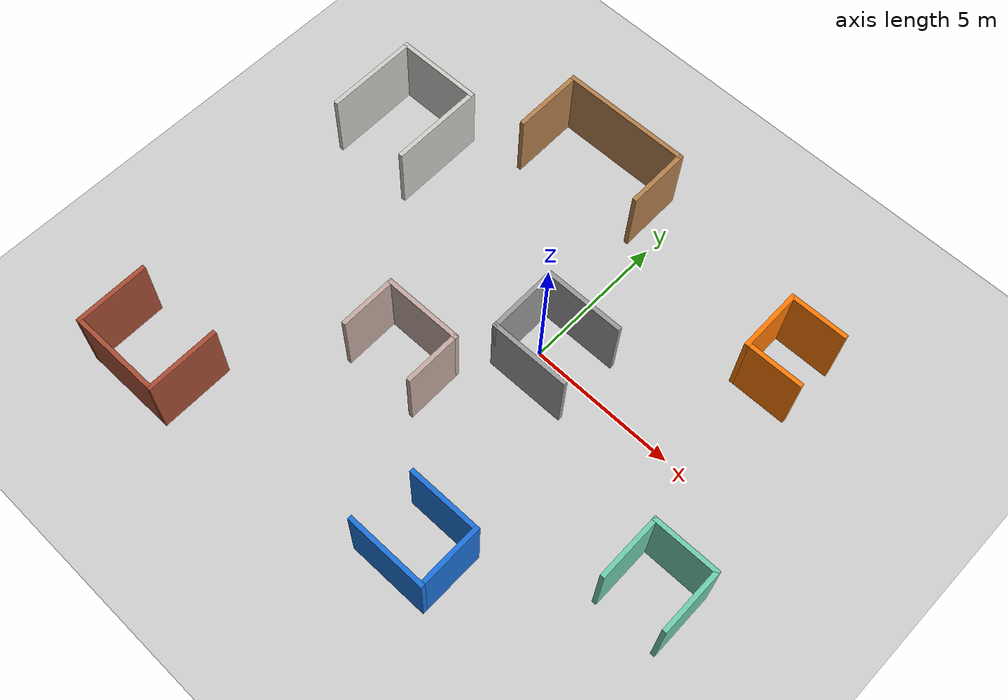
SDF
<sdf version="1.7">
 <world name="default">
  <light name="sun" type="directional">
   <pose>0 0 10 0 -0 0</pose>
   <diffuse>0.8 0.8 0.8 1</diffuse>
   <specular>0.2 0.2 0.2 1</specular>
   <attenuation>
    <range>1000</range>
    <constant>0.9</constant>
    <linear>0.01</linear>
    <quadratic>0.001</quadratic>
   </attenuation>
   <direction>-0.5 0.1 -0.9</direction>
   <spot><inner_angle>0</inner_angle><outer_angle>0</outer_angle><falloff>0</falloff></spot>
  </light>
  <model name="ground_plane">
   <static>1</static>
   <link name="link">
    <collision name="collision">
     <geometry><plane><normal>0 0 1</normal><size>100 100</size></plane></geometry>
     <surface><friction><ode><mu>100</mu><mu2>50</mu2></ode></friction></surface>
    </collision>
    <visual name="visual">
     <cast_shadows>0</cast_shadows>
     <geometry><plane><normal>0 0 1</normal><size>100 100</size></plane></geometry>
     <material>
      <script><uri>file://media/materials/scripts/gazebo.material</uri><name>Gazebo/Grey</name></script>
     </material>
    </visual>
   </link>
  </model>
  <gravity>0 0 -9.8</gravity>
  <magnetic_field>6e-06 2.3e-05 -4.2e-05</magnetic_field>
  <atmosphere type="adiabatic"/>
  <physics type="ode">
   <max_step_size>0.001</max_step_size>
   <real_time_factor>1</real_time_factor>
   <real_time_update_rate>1000</real_time_update_rate>
  </physics>
  <scene><ambient>0.4 0.4 0.4 1</ambient><background>0.7 0.7 0.7 1</background><shadows>1</shadows></scene>
  <audio><device>default</device></audio>
  <spherical_coordinates>
   <surface_model>EARTH_WGS84</surface_model>
   <latitude_deg>0</latitude_deg>
   <longitude_deg>0</longitude_deg>
   <elevation>0</elevation>
   <heading_deg>0</heading_deg>
  </spherical_coordinates>
  <model name="ros2_world">
   <pose>-0.679347 -1.16581 0 0 0 -3.12914</pose>
   <link name="Wall_56">
    <collision name="Wall_56_Collision">
     <geometry><box><size>2.75 0.15 2.5</size></box></geometry>
     <pose>0 0 1.25 0 -0 0</pose>
    </collision>
    <visual name="Wall_56_Visual">
     <pose>0 0 1.25 0 -0 0</pose>
     <geometry><box><size>2.75 0.15 2.5</size></box></geometry>
     <material>
      <script><uri>file://media/materials/scripts/gazebo.material</uri><name>Gazebo/Grey</name></script>
      <ambient>1 1 1 1</ambient>
     </material>
     <meta><layer>0</layer></meta>
    </visual>
    <pose>-1.20089 0.017731 0 0 -0 0</pose>
   </link>
   <link name="Wall_57">
    <collision name="Wall_57_Collision">
     <geometry><box><size>2.5 0.15 2.5</size></box></geometry>
     <pose>0 0 1.25 0 -0 0</pose>
    </collision>
    <visual name="Wall_57_Visual">
     <pose>0 0 1.25 0 -0 0</pose>
     <geometry><box><size>2.5 0.15 2.5</size></box></geometry>
     <material>
      <script><uri>file://media/materials/scripts/gazebo.material</uri><name>Gazebo/Grey</name></script>
      <ambient>1 1 1 1</ambient>
     </material>
     <meta><layer>0</layer></meta>
    </visual>
    <pose>0.099111 -1.15727 0 0 -0 -1.5708</pose>
   </link>
   <link name="Wall_58">
    <collision name="Wall_58_Collision">
     <geometry><box><size>2.75 0.15 2.5</size></box></geometry>
     <pose>0 0 1.25 0 -0 0</pose>
    </collision>
    <visual name="Wall_58_Visual">
     <pose>0 0 1.25 0 -0 0</pose>
     <geometry><box><size>2.75 0.15 2.5</size></box></geometry>
     <material>
      <script><uri>file://media/materials/scripts/gazebo.material</uri><name>Gazebo/Grey</name></script>
      <ambient>1 1 1 1</ambient>
     </material>
     <meta><layer>0</layer></meta>
    </visual>
    <pose>-1.20089 -2.33227 0 0 -0 3.14159</pose>
   </link>
   <link name="Wall_60">
    <collision name="Wall_60_Collision">
     <geometry><box><size>2 0.15 2.5</size></box></geometry>
     <pose>0 0 1.25 0 -0 0</pose>
    </collision>
    <visual name="Wall_60_Visual">
     <pose>0 0 1.25 0 -0 0</pose>
     <geometry><box><size>2 0.15 2.5</size></box></geometry>
     <material>
      <script><uri>file://media/materials/scripts/gazebo.material</uri><name>Gazebo/Grey</name></script>
      <ambient>0.760784 0.662745 0.627451 1</ambient>
     </material>
     <meta><layer>0</layer></meta>
    </visual>
    <pose>0.695285 2.00179 0 0 -0 -1.5708</pose>
   </link>
   <link name="Wall_61">
    <collision name="Wall_61_Collision">
     <geometry><box><size>2.75 0.15 2.5</size></box></geometry>
     <pose>0 0 1.25 0 -0 0</pose>
    </collision>
    <visual name="Wall_61_Visual">
     <pose>0 0 1.25 0 -0 0</pose>
     <geometry><box><size>2.75 0.15 2.5</size></box></geometry>
     <material>
      <script><uri>file://media/materials/scripts/gazebo.material</uri><name>Gazebo/Grey</name></script>
      <ambient>0.760784 0.662745 0.627451 1</ambient>
     </material>
     <meta><layer>0</layer></meta>
    </visual>
    <pose>1.99528 1.07679 0 0 -0 0</pose>
   </link>
   <link name="Wall_62">
    <collision name="Wall_62_Collision">
     <geometry><box><size>2 0.15 2.5</size></box></geometry>
     <pose>0 0 1.25 0 -0 0</pose>
    </collision>
    <visual name="Wall_62_Visual">
     <pose>0 0 1.25 0 -0 0</pose>
     <geometry><box><size>2 0.15 2.5</size></box></geometry>
     <material>
      <script><uri>file://media/materials/scripts/gazebo.material</uri><name>Gazebo/Grey</name></script>
      <ambient>0.760784 0.662745 0.627451 1</ambient>
     </material>
     <meta><layer>0</layer></meta>
    </visual>
    <pose>3.29528 2.00179 0 0 -0 1.5708</pose>
   </link>
   <link name="Wall_64">
    <collision name="Wall_64_Collision">
     <geometry><box><size>2.25 0.15 2.5</size></box></geometry>
     <pose>0 0 1.25 0 -0 0</pose>
    </collision>
    <visual name="Wall_64_Visual">
     <pose>0 0 1.25 0 -0 0</pose>
     <geometry><box><size>2.25 0.15 2.5</size></box></geometry>
     <material>
      <script><uri>file://media/materials/scripts/gazebo.material</uri><name>Gazebo/Grey</name></script>
      <ambient>0.435294 0.796078 0.67451 1</ambient>
     </material>
     <meta><layer>0</layer></meta>
    </visual>
    <pose>-9.049 2.4001 0 0 -0 -1.5708</pose>
   </link>
   <link name="Wall_65">
    <collision name="Wall_65_Collision">
     <geometry><box><size>2.25 0.15 2.5</size></box></geometry>
     <pose>0 0 1.25 0 -0 0</pose>
    </collision>
    <visual name="Wall_65_Visual">
     <pose>0 0 1.25 0 -0 0</pose>
     <geometry><box><size>2.25 0.15 2.5</size></box></geometry>
     <material>
      <script><uri>file://media/materials/scripts/gazebo.material</uri><name>Gazebo/Grey</name></script>
      <ambient>0.435294 0.796078 0.67451 1</ambient>
     </material>
     <meta><layer>0</layer></meta>
    </visual>
    <pose>-7.999 1.3501 0 0 -0 0</pose>
   </link>
   <link name="Wall_66">
    <collision name="Wall_66_Collision">
     <geometry><box><size>2.25 0.15 2.5</size></box></geometry>
     <pose>0 0 1.25 0 -0 0</pose>
    </collision>
    <visual name="Wall_66_Visual">
     <pose>0 0 1.25 0 -0 0</pose>
     <geometry><box><size>2.25 0.15 2.5</size></box></geometry>
     <material>
      <script><uri>file://media/materials/scripts/gazebo.material</uri><name>Gazebo/Grey</name></script>
      <ambient>0.435294 0.796078 0.67451 1</ambient>
     </material>
     <meta><layer>0</layer></meta>
    </visual>
    <pose>-6.949 2.4001 0 0 -0 1.5708</pose>
   </link>
   <link name="Wall_68">
    <collision name="Wall_68_Collision">
     <geometry><box><size>2 0.15 2.5</size></box></geometry>
     <pose>0 0 1.25 0 -0 0</pose>
    </collision>
    <visual name="Wall_68_Visual">
     <pose>0 0 1.25 0 -0 0</pose>
     <geometry><box><size>2 0.15 2.5</size></box></geometry>
     <material>
      <script><uri>file://media/materials/scripts/gazebo.material</uri><name>Gazebo/Grey</name></script>
      <ambient>0.996078 0.47451 0.0196078 1</ambient>
     </material>
     <meta><layer>0</layer></meta>
    </visual>
    <pose>-6.42777 -4.48969 0 0 -0 0</pose>
   </link>
   <link name="Wall_69">
    <collision name="Wall_69_Collision">
     <geometry><box><size>2.25 0.15 2.5</size></box></geometry>
     <pose>0 0 1.25 0 -0 0</pose>
    </collision>
    <visual name="Wall_69_Visual">
     <pose>0 0 1.25 0 -0 0</pose>
     <geometry><box><size>2.25 0.15 2.5</size></box></geometry>
     <material>
      <script><uri>file://media/materials/scripts/gazebo.material</uri><name>Gazebo/Grey</name></script>
      <ambient>0.996078 0.47451 0.0196078 1</ambient>
     </material>
     <meta><layer>0</layer></meta>
    </visual>
    <pose>-5.50277 -5.53969 0 0 -0 -1.5708</pose>
   </link>
   <link name="Wall_70">
    <collision name="Wall_70_Collision">
     <geometry><box><size>2 0.15 2.5</size></box></geometry>
     <pose>0 0 1.25 0 -0 0</pose>
    </collision>
    <visual name="Wall_70_Visual">
     <pose>0 0 1.25 0 -0 0</pose>
     <geometry><box><size>2 0.15 2.5</size></box></geometry>
     <material>
      <script><uri>file://media/materials/scripts/gazebo.material</uri><name>Gazebo/Grey</name></script>
      <ambient>0.996078 0.47451 0.0196078 1</ambient>
     </material>
     <meta><layer>0</layer></meta>
    </visual>
    <pose>-6.42777 -6.58969 0 0 -0 3.14159</pose>
   </link>
   <link name="Wall_72">
    <collision name="Wall_72_Collision">
     <geometry><box><size>3.25 0.15 2.5</size></box></geometry>
     <pose>0 0 1.25 0 -0 0</pose>
    </collision>
    <visual name="Wall_72_Visual">
     <pose>0 0 1.25 0 -0 0</pose>
     <geometry><box><size>3.25 0.15 2.5</size></box></geometry>
     <material>
      <script><uri>file://media/materials/scripts/gazebo.material</uri><name>Gazebo/CeilingTiled</name></script>
      <ambient>0.568627 0.254902 0.67451 1</ambient>
     </material>
     <meta><layer>0</layer></meta>
    </visual>
    <pose>6.199 -3.8743 0 0 -0 -1.5708</pose>
   </link>
   <link name="Wall_73">
    <collision name="Wall_73_Collision">
     <geometry><box><size>3 0.15 2.5</size></box></geometry>
     <pose>0 0 1.25 0 -0 0</pose>
    </collision>
    <visual name="Wall_73_Visual">
     <pose>0 0 1.25 0 -0 0</pose>
     <geometry><box><size>3 0.15 2.5</size></box></geometry>
     <material>
      <script><uri>file://media/materials/scripts/gazebo.material</uri><name>Gazebo/CeilingTiled</name></script>
      <ambient>0.568627 0.254902 0.67451 1</ambient>
     </material>
     <meta><layer>0</layer></meta>
    </visual>
    <pose>7.624 -5.4243 0 0 -0 0</pose>
   </link>
   <link name="Wall_74">
    <collision name="Wall_74_Collision">
     <geometry><box><size>3.25 0.15 2.5</size></box></geometry>
     <pose>0 0 1.25 0 -0 0</pose>
    </collision>
    <visual name="Wall_74_Visual">
     <pose>0 0 1.25 0 -0 0</pose>
     <geometry><box><size>3.25 0.15 2.5</size></box></geometry>
     <material>
      <script><uri>file://media/materials/scripts/gazebo.material</uri><name>Gazebo/CeilingTiled</name></script>
      <ambient>0.568627 0.254902 0.67451 1</ambient>
     </material>
     <meta><layer>0</layer></meta>
    </visual>
    <pose>9.049 -3.8743 0 0 -0 1.5708</pose>
   </link>
   <link name="Wall_76">
    <collision name="Wall_76_Collision">
     <geometry><box><size>2.25 0.15 2.5</size></box></geometry>
     <pose>0 0 1.25 0 -0 0</pose>
    </collision>
    <visual name="Wall_76_Visual">
     <pose>0 0 1.25 0 -0 0</pose>
     <geometry><box><size>2.25 0.15 2.5</size></box></geometry>
     <material>
      <script><uri>file://media/materials/scripts/gazebo.material</uri><name>Gazebo/Wood</name></script>
      <ambient>1 1 1 1</ambient>
     </material>
     <meta><layer>0</layer></meta>
    </visual>
    <pose>-0.044559 -7.07352 0 0 -0 -1.5708</pose>
   </link>
   <link name="Wall_77">
    <collision name="Wall_77_Collision">
     <geometry><box><size>4.5 0.15 2.5</size></box></geometry>
     <pose>0 0 1.25 0 -0 0</pose>
    </collision>
    <visual name="Wall_77_Visual">
     <pose>0 0 1.25 0 -0 0</pose>
     <geometry><box><size>4.5 0.15 2.5</size></box></geometry>
     <material>
      <script><uri>file://media/materials/scripts/gazebo.material</uri><name>Gazebo/Wood</name></script>
      <ambient>1 1 1 1</ambient>
     </material>
     <meta><layer>0</layer></meta>
    </visual>
    <pose>2.13044 -8.12352 0 0 -0 0</pose>
   </link>
   <link name="Wall_78">
    <collision name="Wall_78_Collision">
     <geometry><box><size>2.5 0.15 2.5</size></box></geometry>
     <pose>0 0 1.25 0 -0 0</pose>
    </collision>
    <visual name="Wall_78_Visual">
     <pose>0 0 1.25 0 -0 0</pose>
     <geometry><box><size>2.5 0.15 2.5</size></box></geometry>
     <material>
      <script><uri>file://media/materials/scripts/gazebo.material</uri><name>Gazebo/Wood</name></script>
      <ambient>1 1 1 1</ambient>
     </material>
     <meta><layer>0</layer></meta>
    </visual>
    <pose>4.30544 -6.94852 0 0 -0 1.5708</pose>
   </link>
   <link name="Wall_81">
    <collision name="Wall_81_Collision">
     <geometry><box><size>2.5 0.15 2.5</size></box></geometry>
     <pose>0 0 1.25 0 -0 0</pose>
    </collision>
    <visual name="Wall_81_Visual">
     <pose>0 0 1.25 0 -0 0</pose>
     <geometry><box><size>2.5 0.15 2.5</size></box></geometry>
     <material>
      <script><uri>file://media/materials/scripts/gazebo.material</uri><name>Gazebo/Bricks</name></script>
      <ambient>1 1 1 1</ambient>
     </material>
     <meta><layer>0</layer></meta>
    </visual>
    <pose>5.77354 6.94852 0 0 -0 1.5708</pose>
   </link>
   <link name="Wall_82">
    <collision name="Wall_82_Collision">
     <geometry><box><size>3.25 0.15 2.5</size></box></geometry>
     <pose>0 0 1.25 0 -0 0</pose>
    </collision>
    <visual name="Wall_82_Visual">
     <pose>0 0 1.25 0 -0 0</pose>
     <geometry><box><size>3.25 0.15 2.5</size></box></geometry>
     <material>
      <script><uri>file://media/materials/scripts/gazebo.material</uri><name>Gazebo/Bricks</name></script>
      <ambient>1 1 1 1</ambient>
     </material>
     <meta><layer>0</layer></meta>
    </visual>
    <pose>7.32354 8.12352 0 0 -0 0</pose>
   </link>
   <link name="Wall_83">
    <collision name="Wall_83_Collision">
     <geometry><box><size>2.5 0.15 2.5</size></box></geometry>
     <pose>0 0 1.25 0 -0 0</pose>
    </collision>
    <visual name="Wall_83_Visual">
     <pose>0 0 1.25 0 -0 0</pose>
     <geometry><box><size>2.5 0.15 2.5</size></box></geometry>
     <material>
      <script><uri>file://media/materials/scripts/gazebo.material</uri><name>Gazebo/Bricks</name></script>
      <ambient>1 1 1 1</ambient>
     </material>
     <meta><layer>0</layer></meta>
    </visual>
    <pose>8.87354 6.94852 0 0 -0 -1.5708</pose>
   </link>
   <link name="Wall_85">
    <collision name="Wall_85_Collision">
     <geometry><box><size>2.75 0.15 2.5</size></box></geometry>
     <pose>0 0 1.25 0 -0 0</pose>
    </collision>
    <visual name="Wall_85_Visual">
     <pose>0 0 1.25 0 -0 0</pose>
     <geometry><box><size>2.75 0.15 2.5</size></box></geometry>
     <material>
      <script><uri>file://media/materials/scripts/gazebo.material</uri><name>Gazebo/Grey</name></script>
      <ambient>0.109804 0.443137 0.847059 1</ambient>
     </material>
     <meta><layer>0</layer></meta>
    </visual>
    <pose>-2.36786 6.93467 0 0 -0 3.14159</pose>
   </link>
   <link name="Wall_86">
    <collision name="Wall_86_Collision">
     <geometry><box><size>2.25 0.15 2.5</size></box></geometry>
     <pose>0 0 1.25 0 -0 0</pose>
    </collision>
    <visual name="Wall_86_Visual">
     <pose>0 0 1.25 0 -0 0</pose>
     <geometry><box><size>2.25 0.15 2.5</size></box></geometry>
     <material>
      <script><uri>file://media/materials/scripts/gazebo.material</uri><name>Gazebo/Grey</name></script>
      <ambient>0.109804 0.443137 0.847059 1</ambient>
     </material>
     <meta><layer>0</layer></meta>
    </visual>
    <pose>-3.66786 5.88467 0 0 -0 -1.5708</pose>
   </link>
   <link name="Wall_87">
    <collision name="Wall_87_Collision">
     <geometry><box><size>2.5 0.15 2.5</size></box></geometry>
     <pose>0 0 1.25 0 -0 0</pose>
    </collision>
    <visual name="Wall_87_Visual">
     <pose>0 0 1.25 0 -0 0</pose>
     <geometry><box><size>2.5 0.15 2.5</size></box></geometry>
     <material>
      <script><uri>file://media/materials/scripts/gazebo.material</uri><name>Gazebo/Grey</name></script>
      <ambient>0.109804 0.443137 0.847059 1</ambient>
     </material>
     <meta><layer>0</layer></meta>
    </visual>
    <pose>-2.49286 4.83467 0 0 -0 0</pose>
   </link>
   <static>1</static>
  </model>
 </world>
</sdf>
